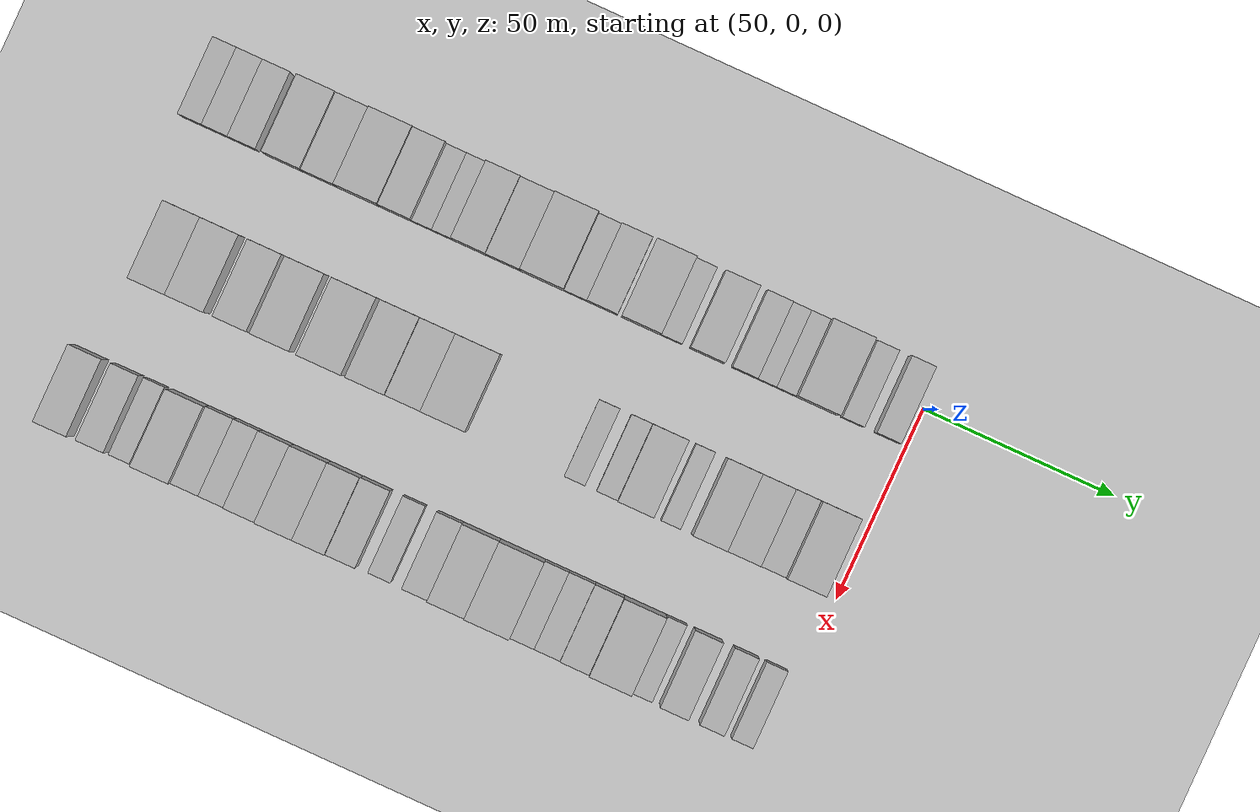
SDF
<sdf version="1.6">
 <world name="default">
  <include><name>ground_plane_1</name><uri>model://HANNAS_ground_plane</uri></include>
  <model name="building_22">
   <static>1</static>
   <pose>50.0000 -186.6353 0 0.000000 0.000000 0.000000</pose>
   <link name="link">
    <pose>0 0 7.50 0 0 0</pose>
    <collision name="collision"><geometry><box><size>20.0000 6.1611 15.0000</size></box></geometry></collision>
    <visual name="visual">
     <cast_shadows>0</cast_shadows>
     <geometry><box><size>20.0000 6.1611 15.0000</size></box></geometry>
     <material>
      <script>
       <uri>model://HANNAS_wall/materials/scripts</uri>
       <uri>model://HANNAS_wall/materials/textures</uri>
       <name>vrc/HANNAS_wall</name>
      </script>
     </material>
    </visual>
   </link>
  </model>
  <model name="building_23">
   <static>1</static>
   <pose>50.0000 -180.1994 0 0.000000 0.000000 0.000000</pose>
   <link name="link">
    <pose>0 0 7.50 0 0 0</pose>
    <collision name="collision"><geometry><box><size>20.0000 6.7107 15.0000</size></box></geometry></collision>
    <visual name="visual">
     <cast_shadows>0</cast_shadows>
     <geometry><box><size>20.0000 6.7107 15.0000</size></box></geometry>
     <material>
      <script>
       <uri>model://HANNAS_wall/materials/scripts</uri>
       <uri>model://HANNAS_wall/materials/textures</uri>
       <name>vrc/HANNAS_wall</name>
      </script>
     </material>
    </visual>
   </link>
  </model>
  <model name="building_24">
   <static>1</static>
   <pose>50.0000 -173.2218 0 0.000000 0.000000 0.000000</pose>
   <link name="link">
    <pose>0 0 7.50 0 0 0</pose>
    <collision name="collision"><geometry><box><size>20.0000 7.2445 15.0000</size></box></geometry></collision>
    <visual name="visual">
     <cast_shadows>0</cast_shadows>
     <geometry><box><size>20.0000 7.2445 15.0000</size></box></geometry>
     <material>
      <script>
       <uri>model://HANNAS_wall/materials/scripts</uri>
       <uri>model://HANNAS_wall/materials/textures</uri>
       <name>vrc/HANNAS_wall</name>
      </script>
     </material>
    </visual>
   </link>
  </model>
  <model name="building_25">
   <static>1</static>
   <pose>50.0000 -162.6572 0 0.000000 0.000000 0.000000</pose>
   <link name="link">
    <pose>0 0 10.50 0 0 0</pose>
    <collision name="collision"><geometry><box><size>20.0000 9.8846 21.0000</size></box></geometry></collision>
    <visual name="visual">
     <cast_shadows>0</cast_shadows>
     <geometry><box><size>20.0000 9.8846 21.0000</size></box></geometry>
     <material>
      <script>
       <uri>model://HANNAS_wall/materials/scripts</uri>
       <uri>model://HANNAS_wall/materials/textures</uri>
       <name>vrc/HANNAS_wall</name>
      </script>
     </material>
    </visual>
   </link>
  </model>
  <model name="building_26">
   <static>1</static>
   <pose>50.0000 -153.3153 0 0.000000 0.000000 0.000000</pose>
   <link name="link">
    <pose>0 0 9.00 0 0 0</pose>
    <collision name="collision"><geometry><box><size>20.0000 8.7991 18.0000</size></box></geometry></collision>
    <visual name="visual">
     <cast_shadows>0</cast_shadows>
     <geometry><box><size>20.0000 8.7991 18.0000</size></box></geometry>
     <material>
      <script>
       <uri>model://HANNAS_wall/materials/scripts</uri>
       <uri>model://HANNAS_wall/materials/textures</uri>
       <name>vrc/HANNAS_wall</name>
      </script>
     </material>
    </visual>
   </link>
  </model>
  <model name="building_27">
   <static>1</static>
   <pose>50.0000 -143.3040 0 0.000000 0.000000 0.000000</pose>
   <link name="link">
    <pose>0 0 12.00 0 0 0</pose>
    <collision name="collision"><geometry><box><size>20.0000 11.2236 24.0000</size></box></geometry></collision>
    <visual name="visual">
     <cast_shadows>0</cast_shadows>
     <geometry><box><size>20.0000 11.2236 24.0000</size></box></geometry>
     <material>
      <script>
       <uri>model://HANNAS_wall/materials/scripts</uri>
       <uri>model://HANNAS_wall/materials/textures</uri>
       <name>vrc/HANNAS_wall</name>
      </script>
     </material>
    </visual>
   </link>
  </model>
  <model name="building_28">
   <static>1</static>
   <pose>50.0000 -133.4801 0 0.000000 0.000000 0.000000</pose>
   <link name="link">
    <pose>0 0 10.50 0 0 0</pose>
    <collision name="collision"><geometry><box><size>20.0000 8.4241 21.0000</size></box></geometry></collision>
    <visual name="visual">
     <cast_shadows>0</cast_shadows>
     <geometry><box><size>20.0000 8.4241 21.0000</size></box></geometry>
     <material>
      <script>
       <uri>model://HANNAS_wall/materials/scripts</uri>
       <uri>model://HANNAS_wall/materials/textures</uri>
       <name>vrc/HANNAS_wall</name>
      </script>
     </material>
    </visual>
   </link>
  </model>
  <model name="building_29">
   <static>1</static>
   <pose>50.0000 -126.6623 0 0.000000 0.000000 0.000000</pose>
   <link name="link">
    <pose>0 0 6.00 0 0 0</pose>
    <collision name="collision"><geometry><box><size>20.0000 5.2115 12.0000</size></box></geometry></collision>
    <visual name="visual">
     <cast_shadows>0</cast_shadows>
     <geometry><box><size>20.0000 5.2115 12.0000</size></box></geometry>
     <material>
      <script>
       <uri>model://HANNAS_wall/materials/scripts</uri>
       <uri>model://HANNAS_wall/materials/textures</uri>
       <name>vrc/HANNAS_wall</name>
      </script>
     </material>
    </visual>
   </link>
  </model>
  <model name="building_30">
   <static>1</static>
   <pose>50.0000 -121.4434 0 0.000000 0.000000 0.000000</pose>
   <link name="link">
    <pose>0 0 6.00 0 0 0</pose>
    <collision name="collision"><geometry><box><size>20.0000 5.2263 12.0000</size></box></geometry></collision>
    <visual name="visual">
     <cast_shadows>0</cast_shadows>
     <geometry><box><size>20.0000 5.2263 12.0000</size></box></geometry>
     <material>
      <script>
       <uri>model://HANNAS_wall/materials/scripts</uri>
       <uri>model://HANNAS_wall/materials/textures</uri>
       <name>vrc/HANNAS_wall</name>
      </script>
     </material>
    </visual>
   </link>
  </model>
  <model name="building_31">
   <static>1</static>
   <pose>50.0000 -114.3831 0 0.000000 0.000000 0.000000</pose>
   <link name="link">
    <pose>0 0 10.50 0 0 0</pose>
    <collision name="collision"><geometry><box><size>20.0000 8.8944 21.0000</size></box></geometry></collision>
    <visual name="visual">
     <cast_shadows>0</cast_shadows>
     <geometry><box><size>20.0000 8.8944 21.0000</size></box></geometry>
     <material>
      <script>
       <uri>model://HANNAS_wall/materials/scripts</uri>
       <uri>model://HANNAS_wall/materials/textures</uri>
       <name>vrc/HANNAS_wall</name>
      </script>
     </material>
    </visual>
   </link>
  </model>
  <model name="building_32">
   <static>1</static>
   <pose>50.0000 -105.4731 0 0.000000 0.000000 0.000000</pose>
   <link name="link">
    <pose>0 0 9.00 0 0 0</pose>
    <collision name="collision"><geometry><box><size>20.0000 8.9255 18.0000</size></box></geometry></collision>
    <visual name="visual">
     <cast_shadows>0</cast_shadows>
     <geometry><box><size>20.0000 8.9255 18.0000</size></box></geometry>
     <material>
      <script>
       <uri>model://HANNAS_wall/materials/scripts</uri>
       <uri>model://HANNAS_wall/materials/textures</uri>
       <name>vrc/HANNAS_wall</name>
      </script>
     </material>
    </visual>
   </link>
  </model>
  <model name="building_33">
   <static>1</static>
   <pose>50.0000 -95.3395 0 0.000000 0.000000 0.000000</pose>
   <link name="link">
    <pose>0 0 12.00 0 0 0</pose>
    <collision name="collision"><geometry><box><size>20.0000 11.3417 24.0000</size></box></geometry></collision>
    <visual name="visual">
     <cast_shadows>0</cast_shadows>
     <geometry><box><size>20.0000 11.3417 24.0000</size></box></geometry>
     <material>
      <script>
       <uri>model://HANNAS_wall/materials/scripts</uri>
       <uri>model://HANNAS_wall/materials/textures</uri>
       <name>vrc/HANNAS_wall</name>
      </script>
     </material>
    </visual>
   </link>
  </model>
  <model name="building_34">
   <static>1</static>
   <pose>50.0000 -86.6856 0 0.000000 0.000000 0.000000</pose>
   <link name="link">
    <pose>0 0 6.00 0 0 0</pose>
    <collision name="collision"><geometry><box><size>20.0000 5.9661 12.0000</size></box></geometry></collision>
    <visual name="visual">
     <cast_shadows>0</cast_shadows>
     <geometry><box><size>20.0000 5.9661 12.0000</size></box></geometry>
     <material>
      <script>
       <uri>model://HANNAS_wall/materials/scripts</uri>
       <uri>model://HANNAS_wall/materials/textures</uri>
       <name>vrc/HANNAS_wall</name>
      </script>
     </material>
    </visual>
   </link>
  </model>
  <model name="building_35">
   <static>1</static>
   <pose>50.0000 -79.6899 0 0.000000 0.000000 0.000000</pose>
   <link name="link">
    <pose>0 0 9.00 0 0 0</pose>
    <collision name="collision"><geometry><box><size>20.0000 8.0252 18.0000</size></box></geometry></collision>
    <visual name="visual">
     <cast_shadows>0</cast_shadows>
     <geometry><box><size>20.0000 8.0252 18.0000</size></box></geometry>
     <material>
      <script>
       <uri>model://HANNAS_wall/materials/scripts</uri>
       <uri>model://HANNAS_wall/materials/textures</uri>
       <name>vrc/HANNAS_wall</name>
      </script>
     </material>
    </visual>
   </link>
  </model>
  <model name="building_36">
   <static>1</static>
   <pose>50.0000 -69.5287 0 0.000000 0.000000 0.000000</pose>
   <link name="link">
    <pose>0 0 12.00 0 0 0</pose>
    <collision name="collision"><geometry><box><size>20.0000 10.2972 24.0000</size></box></geometry></collision>
    <visual name="visual">
     <cast_shadows>0</cast_shadows>
     <geometry><box><size>20.0000 10.2972 24.0000</size></box></geometry>
     <material>
      <script>
       <uri>model://HANNAS_wall/materials/scripts</uri>
       <uri>model://HANNAS_wall/materials/textures</uri>
       <name>vrc/HANNAS_wall</name>
      </script>
     </material>
    </visual>
   </link>
  </model>
  <model name="building_37">
   <static>1</static>
   <pose>50.0000 -61.6274 0 0.000000 0.000000 0.000000</pose>
   <link name="link">
    <pose>0 0 6.00 0 0 0</pose>
    <collision name="collision"><geometry><box><size>20.0000 5.5054 12.0000</size></box></geometry></collision>
    <visual name="visual">
     <cast_shadows>0</cast_shadows>
     <geometry><box><size>20.0000 5.5054 12.0000</size></box></geometry>
     <material>
      <script>
       <uri>model://HANNAS_wall/materials/scripts</uri>
       <uri>model://HANNAS_wall/materials/textures</uri>
       <name>vrc/HANNAS_wall</name>
      </script>
     </material>
    </visual>
   </link>
  </model>
  <model name="building_38">
   <static>1</static>
   <pose>50.0000 -52.4011 0 0.000000 0.000000 0.000000</pose>
   <link name="link">
    <pose>0 0 10.50 0 0 0</pose>
    <collision name="collision"><geometry><box><size>20.0000 8.9473 21.0000</size></box></geometry></collision>
    <visual name="visual">
     <cast_shadows>0</cast_shadows>
     <geometry><box><size>20.0000 8.9473 21.0000</size></box></geometry>
     <material>
      <script>
       <uri>model://HANNAS_wall/materials/scripts</uri>
       <uri>model://HANNAS_wall/materials/textures</uri>
       <name>vrc/HANNAS_wall</name>
      </script>
     </material>
    </visual>
   </link>
  </model>
  <model name="building_39">
   <static>1</static>
   <pose>50.0000 -42.5982 0 0.000000 0.000000 0.000000</pose>
   <link name="link">
    <pose>0 0 7.50 0 0 0</pose>
    <collision name="collision"><geometry><box><size>20.0000 6.6586 15.0000</size></box></geometry></collision>
    <visual name="visual">
     <cast_shadows>0</cast_shadows>
     <geometry><box><size>20.0000 6.6586 15.0000</size></box></geometry>
     <material>
      <script>
       <uri>model://HANNAS_wall/materials/scripts</uri>
       <uri>model://HANNAS_wall/materials/textures</uri>
       <name>vrc/HANNAS_wall</name>
      </script>
     </material>
    </visual>
   </link>
  </model>
  <model name="building_40">
   <static>1</static>
   <pose>50.0000 -36.8276 0 0.000000 0.000000 0.000000</pose>
   <link name="link">
    <pose>0 0 6.00 0 0 0</pose>
    <collision name="collision"><geometry><box><size>20.0000 4.8826 12.0000</size></box></geometry></collision>
    <visual name="visual">
     <cast_shadows>0</cast_shadows>
     <geometry><box><size>20.0000 4.8826 12.0000</size></box></geometry>
     <material>
      <script>
       <uri>model://HANNAS_wall/materials/scripts</uri>
       <uri>model://HANNAS_wall/materials/textures</uri>
       <name>vrc/HANNAS_wall</name>
      </script>
     </material>
    </visual>
   </link>
  </model>
  <model name="building_41">
   <static>1</static>
   <pose>50.0000 -31.8640 0 0.000000 0.000000 0.000000</pose>
   <link name="link">
    <pose>0 0 6.00 0 0 0</pose>
    <collision name="collision"><geometry><box><size>20.0000 5.0447 12.0000</size></box></geometry></collision>
    <visual name="visual">
     <cast_shadows>0</cast_shadows>
     <geometry><box><size>20.0000 5.0447 12.0000</size></box></geometry>
     <material>
      <script>
       <uri>model://HANNAS_wall/materials/scripts</uri>
       <uri>model://HANNAS_wall/materials/textures</uri>
       <name>vrc/HANNAS_wall</name>
      </script>
     </material>
    </visual>
   </link>
  </model>
  <model name="building_42">
   <static>1</static>
   <pose>50.0000 -23.8249 0 0.000000 0.000000 0.000000</pose>
   <link name="link">
    <pose>0 0 12.00 0 0 0</pose>
    <collision name="collision"><geometry><box><size>20.0000 11.0335 24.0000</size></box></geometry></collision>
    <visual name="visual">
     <cast_shadows>0</cast_shadows>
     <geometry><box><size>20.0000 11.0335 24.0000</size></box></geometry>
     <material>
      <script>
       <uri>model://HANNAS_wall/materials/scripts</uri>
       <uri>model://HANNAS_wall/materials/textures</uri>
       <name>vrc/HANNAS_wall</name>
      </script>
     </material>
    </visual>
   </link>
  </model>
  <model name="building_43">
   <static>1</static>
   <pose>50.0000 -14.4218 0 0.000000 0.000000 0.000000</pose>
   <link name="link">
    <pose>0 0 6.00 0 0 0</pose>
    <collision name="collision"><geometry><box><size>20.0000 5.7728 12.0000</size></box></geometry></collision>
    <visual name="visual">
     <cast_shadows>0</cast_shadows>
     <geometry><box><size>20.0000 5.7728 12.0000</size></box></geometry>
     <material>
      <script>
       <uri>model://HANNAS_wall/materials/scripts</uri>
       <uri>model://HANNAS_wall/materials/textures</uri>
       <name>vrc/HANNAS_wall</name>
      </script>
     </material>
    </visual>
   </link>
  </model>
  <model name="building_44">
   <static>1</static>
   <pose>50.0000 -5.3733 0 0.000000 0.000000 0.000000</pose>
   <link name="link">
    <pose>0 0 7.50 0 0 0</pose>
    <collision name="collision"><geometry><box><size>20.0000 6.3242 15.0000</size></box></geometry></collision>
    <visual name="visual">
     <cast_shadows>0</cast_shadows>
     <geometry><box><size>20.0000 6.3242 15.0000</size></box></geometry>
     <material>
      <script>
       <uri>model://HANNAS_wall/materials/scripts</uri>
       <uri>model://HANNAS_wall/materials/textures</uri>
       <name>vrc/HANNAS_wall</name>
      </script>
     </material>
    </visual>
   </link>
  </model>
  <model name="building_104">
   <static>1</static>
   <pose>90.0000 -179.0291 0 0.000000 0.000000 0.000000</pose>
   <link name="link">
    <pose>0 0 10.50 0 0 0</pose>
    <collision name="collision"><geometry><box><size>20.0000 9.5941 21.0000</size></box></geometry></collision>
    <visual name="visual">
     <cast_shadows>0</cast_shadows>
     <geometry><box><size>20.0000 9.5941 21.0000</size></box></geometry>
     <material>
      <script>
       <uri>model://HANNAS_wall/materials/scripts</uri>
       <uri>model://HANNAS_wall/materials/textures</uri>
       <name>vrc/HANNAS_wall</name>
      </script>
     </material>
    </visual>
   </link>
  </model>
  <model name="building_105">
   <static>1</static>
   <pose>90.0000 -169.2401 0 0.000000 0.000000 0.000000</pose>
   <link name="link">
    <pose>0 0 10.50 0 0 0</pose>
    <collision name="collision"><geometry><box><size>20.0000 9.9839 21.0000</size></box></geometry></collision>
    <visual name="visual">
     <cast_shadows>0</cast_shadows>
     <geometry><box><size>20.0000 9.9839 21.0000</size></box></geometry>
     <material>
      <script>
       <uri>model://HANNAS_wall/materials/scripts</uri>
       <uri>model://HANNAS_wall/materials/textures</uri>
       <name>vrc/HANNAS_wall</name>
      </script>
     </material>
    </visual>
   </link>
  </model>
  <model name="building_106">
   <static>1</static>
   <pose>90.0000 -157.8310 0 0.000000 0.000000 0.000000</pose>
   <link name="link">
    <pose>0 0 9.00 0 0 0</pose>
    <collision name="collision"><geometry><box><size>20.0000 8.8343 18.0000</size></box></geometry></collision>
    <visual name="visual">
     <cast_shadows>0</cast_shadows>
     <geometry><box><size>20.0000 8.8343 18.0000</size></box></geometry>
     <material>
      <script>
       <uri>model://HANNAS_wall/materials/scripts</uri>
       <uri>model://HANNAS_wall/materials/textures</uri>
       <name>vrc/HANNAS_wall</name>
      </script>
     </material>
    </visual>
   </link>
  </model>
  <model name="building_107">
   <static>1</static>
   <pose>90.0000 -147.3095 0 0.000000 0.000000 0.000000</pose>
   <link name="link">
    <pose>0 0 10.50 0 0 0</pose>
    <collision name="collision"><geometry><box><size>20.0000 10.2088 21.0000</size></box></geometry></collision>
    <visual name="visual">
     <cast_shadows>0</cast_shadows>
     <geometry><box><size>20.0000 10.2088 21.0000</size></box></geometry>
     <material>
      <script>
       <uri>model://HANNAS_wall/materials/scripts</uri>
       <uri>model://HANNAS_wall/materials/textures</uri>
       <name>vrc/HANNAS_wall</name>
      </script>
     </material>
    </visual>
   </link>
  </model>
  <model name="building_108">
   <static>1</static>
   <pose>90.0000 -134.4307 0 0.000000 0.000000 0.000000</pose>
   <link name="link">
    <pose>0 0 12.00 0 0 0</pose>
    <collision name="collision"><geometry><box><size>20.0000 11.5488 24.0000</size></box></geometry></collision>
    <visual name="visual">
     <cast_shadows>0</cast_shadows>
     <geometry><box><size>20.0000 11.5488 24.0000</size></box></geometry>
     <material>
      <script>
       <uri>model://HANNAS_wall/materials/scripts</uri>
       <uri>model://HANNAS_wall/materials/textures</uri>
       <name>vrc/HANNAS_wall</name>
      </script>
     </material>
    </visual>
   </link>
  </model>
  <model name="building_109">
   <static>1</static>
   <pose>90.0000 -122.5979 0 0.000000 0.000000 0.000000</pose>
   <link name="link">
    <pose>0 0 12.00 0 0 0</pose>
    <collision name="collision"><geometry><box><size>20.0000 10.1167 24.0000</size></box></geometry></collision>
    <visual name="visual">
     <cast_shadows>0</cast_shadows>
     <geometry><box><size>20.0000 10.1167 24.0000</size></box></geometry>
     <material>
      <script>
       <uri>model://HANNAS_wall/materials/scripts</uri>
       <uri>model://HANNAS_wall/materials/textures</uri>
       <name>vrc/HANNAS_wall</name>
      </script>
     </material>
    </visual>
   </link>
  </model>
  <model name="building_110">
   <static>1</static>
   <pose>90.0000 -112.9334 0 0.000000 0.000000 0.000000</pose>
   <link name="link">
    <pose>0 0 10.50 0 0 0</pose>
    <collision name="collision"><geometry><box><size>20.0000 9.2124 21.0000</size></box></geometry></collision>
    <visual name="visual">
     <cast_shadows>0</cast_shadows>
     <geometry><box><size>20.0000 9.2124 21.0000</size></box></geometry>
     <material>
      <script>
       <uri>model://HANNAS_wall/materials/scripts</uri>
       <uri>model://HANNAS_wall/materials/textures</uri>
       <name>vrc/HANNAS_wall</name>
      </script>
     </material>
    </visual>
   </link>
  </model>
  <model name="building_111">
   <static>1</static>
   <pose>90.0000 -102.5523 0 0.000000 0.000000 0.000000</pose>
   <link name="link">
    <pose>0 0 12.00 0 0 0</pose>
    <collision name="collision"><geometry><box><size>20.0000 11.5497 24.0000</size></box></geometry></collision>
    <visual name="visual">
     <cast_shadows>0</cast_shadows>
     <geometry><box><size>20.0000 11.5497 24.0000</size></box></geometry>
     <material>
      <script>
       <uri>model://HANNAS_wall/materials/scripts</uri>
       <uri>model://HANNAS_wall/materials/textures</uri>
       <name>vrc/HANNAS_wall</name>
      </script>
     </material>
    </visual>
   </link>
  </model>
  <model name="building_112">
   <static>1</static>
   <pose>90.0000 -68.6196 0 0.000000 0.000000 0.000000</pose>
   <link name="link">
    <pose>0 0 6.00 0 0 0</pose>
    <collision name="collision"><geometry><box><size>20.0000 5.4385 12.0000</size></box></geometry></collision>
    <visual name="visual">
     <cast_shadows>0</cast_shadows>
     <geometry><box><size>20.0000 5.4385 12.0000</size></box></geometry>
     <material>
      <script>
       <uri>model://HANNAS_wall/materials/scripts</uri>
       <uri>model://HANNAS_wall/materials/textures</uri>
       <name>vrc/HANNAS_wall</name>
      </script>
     </material>
    </visual>
   </link>
  </model>
  <model name="building_113">
   <static>1</static>
   <pose>90.0000 -60.1646 0 0.000000 0.000000 0.000000</pose>
   <link name="link">
    <pose>0 0 6.00 0 0 0</pose>
    <collision name="collision"><geometry><box><size>20.0000 5.4714 12.0000</size></box></geometry></collision>
    <visual name="visual">
     <cast_shadows>0</cast_shadows>
     <geometry><box><size>20.0000 5.4714 12.0000</size></box></geometry>
     <material>
      <script>
       <uri>model://HANNAS_wall/materials/scripts</uri>
       <uri>model://HANNAS_wall/materials/textures</uri>
       <name>vrc/HANNAS_wall</name>
      </script>
     </material>
    </visual>
   </link>
  </model>
  <model name="building_114">
   <static>1</static>
   <pose>90.0000 -52.7710 0 0.000000 0.000000 0.000000</pose>
   <link name="link">
    <pose>0 0 10.50 0 0 0</pose>
    <collision name="collision"><geometry><box><size>20.0000 9.3159 21.0000</size></box></geometry></collision>
    <visual name="visual">
     <cast_shadows>0</cast_shadows>
     <geometry><box><size>20.0000 9.3159 21.0000</size></box></geometry>
     <material>
      <script>
       <uri>model://HANNAS_wall/materials/scripts</uri>
       <uri>model://HANNAS_wall/materials/textures</uri>
       <name>vrc/HANNAS_wall</name>
      </script>
     </material>
    </visual>
   </link>
  </model>
  <model name="building_115">
   <static>1</static>
   <pose>90.0000 -43.6032 0 0.000000 0.000000 0.000000</pose>
   <link name="link">
    <pose>0 0 6.00 0 0 0</pose>
    <collision name="collision"><geometry><box><size>20.0000 5.0196 12.0000</size></box></geometry></collision>
    <visual name="visual">
     <cast_shadows>0</cast_shadows>
     <geometry><box><size>20.0000 5.0196 12.0000</size></box></geometry>
     <material>
      <script>
       <uri>model://HANNAS_wall/materials/scripts</uri>
       <uri>model://HANNAS_wall/materials/textures</uri>
       <name>vrc/HANNAS_wall</name>
      </script>
     </material>
    </visual>
   </link>
  </model>
  <model name="building_116">
   <static>1</static>
   <pose>90.0000 -33.6098 0 0.000000 0.000000 0.000000</pose>
   <link name="link">
    <pose>0 0 10.50 0 0 0</pose>
    <collision name="collision"><geometry><box><size>20.0000 8.9673 21.0000</size></box></geometry></collision>
    <visual name="visual">
     <cast_shadows>0</cast_shadows>
     <geometry><box><size>20.0000 8.9673 21.0000</size></box></geometry>
     <material>
      <script>
       <uri>model://HANNAS_wall/materials/scripts</uri>
       <uri>model://HANNAS_wall/materials/textures</uri>
       <name>vrc/HANNAS_wall</name>
      </script>
     </material>
    </visual>
   </link>
  </model>
  <model name="building_117">
   <static>1</static>
   <pose>90.0000 -24.7744 0 0.000000 0.000000 0.000000</pose>
   <link name="link">
    <pose>0 0 9.00 0 0 0</pose>
    <collision name="collision"><geometry><box><size>20.0000 8.7035 18.0000</size></box></geometry></collision>
    <visual name="visual">
     <cast_shadows>0</cast_shadows>
     <geometry><box><size>20.0000 8.7035 18.0000</size></box></geometry>
     <material>
      <script>
       <uri>model://HANNAS_wall/materials/scripts</uri>
       <uri>model://HANNAS_wall/materials/textures</uri>
       <name>vrc/HANNAS_wall</name>
      </script>
     </material>
    </visual>
   </link>
  </model>
  <model name="building_118">
   <static>1</static>
   <pose>90.0000 -17.1199 0 0.000000 0.000000 0.000000</pose>
   <link name="link">
    <pose>0 0 7.50 0 0 0</pose>
    <collision name="collision"><geometry><box><size>20.0000 6.6056 15.0000</size></box></geometry></collision>
    <visual name="visual">
     <cast_shadows>0</cast_shadows>
     <geometry><box><size>20.0000 6.6056 15.0000</size></box></geometry>
     <material>
      <script>
       <uri>model://HANNAS_wall/materials/scripts</uri>
       <uri>model://HANNAS_wall/materials/textures</uri>
       <name>vrc/HANNAS_wall</name>
      </script>
     </material>
    </visual>
   </link>
  </model>
  <model name="building_119">
   <static>1</static>
   <pose>90.0000 -8.7834 0 0.000000 0.000000 0.000000</pose>
   <link name="link">
    <pose>0 0 12.00 0 0 0</pose>
    <collision name="collision"><geometry><box><size>20.0000 10.0673 24.0000</size></box></geometry></collision>
    <visual name="visual">
     <cast_shadows>0</cast_shadows>
     <geometry><box><size>20.0000 10.0673 24.0000</size></box></geometry>
     <material>
      <script>
       <uri>model://HANNAS_wall/materials/scripts</uri>
       <uri>model://HANNAS_wall/materials/textures</uri>
       <name>vrc/HANNAS_wall</name>
      </script>
     </material>
    </visual>
   </link>
  </model>
  <model name="building_183">
   <static>1</static>
   <pose>130.0000 -186.0179 0 0.000000 0.000000 0.000000</pose>
   <link name="link">
    <pose>0 0 9.00 0 0 0</pose>
    <collision name="collision"><geometry><box><size>20.0000 8.6584 18.0000</size></box></geometry></collision>
    <visual name="visual">
     <cast_shadows>0</cast_shadows>
     <geometry><box><size>20.0000 8.6584 18.0000</size></box></geometry>
     <material>
      <script>
       <uri>model://HANNAS_wall/materials/scripts</uri>
       <uri>model://HANNAS_wall/materials/textures</uri>
       <name>vrc/HANNAS_wall</name>
      </script>
     </material>
    </visual>
   </link>
  </model>
  <model name="building_184">
   <static>1</static>
   <pose>130.0000 -176.0645 0 0.000000 0.000000 0.000000</pose>
   <link name="link">
    <pose>0 0 7.50 0 0 0</pose>
    <collision name="collision"><geometry><box><size>20.0000 7.2484 15.0000</size></box></geometry></collision>
    <visual name="visual">
     <cast_shadows>0</cast_shadows>
     <geometry><box><size>20.0000 7.2484 15.0000</size></box></geometry>
     <material>
      <script>
       <uri>model://HANNAS_wall/materials/scripts</uri>
       <uri>model://HANNAS_wall/materials/textures</uri>
       <name>vrc/HANNAS_wall</name>
      </script>
     </material>
    </visual>
   </link>
  </model>
  <model name="building_185">
   <static>1</static>
   <pose>130.0000 -168.7108 0 0.000000 0.000000 0.000000</pose>
   <link name="link">
    <pose>0 0 6.00 0 0 0</pose>
    <collision name="collision"><geometry><box><size>20.0000 5.4588 12.0000</size></box></geometry></collision>
    <visual name="visual">
     <cast_shadows>0</cast_shadows>
     <geometry><box><size>20.0000 5.4588 12.0000</size></box></geometry>
     <material>
      <script>
       <uri>model://HANNAS_wall/materials/scripts</uri>
       <uri>model://HANNAS_wall/materials/textures</uri>
       <name>vrc/HANNAS_wall</name>
      </script>
     </material>
    </visual>
   </link>
  </model>
  <model name="building_186">
   <static>1</static>
   <pose>130.0000 -160.0265 0 0.000000 0.000000 0.000000</pose>
   <link name="link">
    <pose>0 0 10.50 0 0 0</pose>
    <collision name="collision"><geometry><box><size>20.0000 9.9099 21.0000</size></box></geometry></collision>
    <visual name="visual">
     <cast_shadows>0</cast_shadows>
     <geometry><box><size>20.0000 9.9099 21.0000</size></box></geometry>
     <material>
      <script>
       <uri>model://HANNAS_wall/materials/scripts</uri>
       <uri>model://HANNAS_wall/materials/textures</uri>
       <name>vrc/HANNAS_wall</name>
      </script>
     </material>
    </visual>
   </link>
  </model>
  <model name="building_187">
   <static>1</static>
   <pose>130.0000 -151.4911 0 0.000000 0.000000 0.000000</pose>
   <link name="link">
    <pose>0 0 7.50 0 0 0</pose>
    <collision name="collision"><geometry><box><size>20.0000 7.1608 15.0000</size></box></geometry></collision>
    <visual name="visual">
     <cast_shadows>0</cast_shadows>
     <geometry><box><size>20.0000 7.1608 15.0000</size></box></geometry>
     <material>
      <script>
       <uri>model://HANNAS_wall/materials/scripts</uri>
       <uri>model://HANNAS_wall/materials/textures</uri>
       <name>vrc/HANNAS_wall</name>
      </script>
     </material>
    </visual>
   </link>
  </model>
  <model name="building_188">
   <static>1</static>
   <pose>130.0000 -144.5807 0 0.000000 0.000000 0.000000</pose>
   <link name="link">
    <pose>0 0 7.50 0 0 0</pose>
    <collision name="collision"><geometry><box><size>20.0000 6.6601 15.0000</size></box></geometry></collision>
    <visual name="visual">
     <cast_shadows>0</cast_shadows>
     <geometry><box><size>20.0000 6.6601 15.0000</size></box></geometry>
     <material>
      <script>
       <uri>model://HANNAS_wall/materials/scripts</uri>
       <uri>model://HANNAS_wall/materials/textures</uri>
       <name>vrc/HANNAS_wall</name>
      </script>
     </material>
    </visual>
   </link>
  </model>
  <model name="building_189">
   <static>1</static>
   <pose>130.0000 -137.1138 0 0.000000 0.000000 0.000000</pose>
   <link name="link">
    <pose>0 0 9.00 0 0 0</pose>
    <collision name="collision"><geometry><box><size>20.0000 8.2738 18.0000</size></box></geometry></collision>
    <visual name="visual">
     <cast_shadows>0</cast_shadows>
     <geometry><box><size>20.0000 8.2738 18.0000</size></box></geometry>
     <material>
      <script>
       <uri>model://HANNAS_wall/materials/scripts</uri>
       <uri>model://HANNAS_wall/materials/textures</uri>
       <name>vrc/HANNAS_wall</name>
      </script>
     </material>
    </visual>
   </link>
  </model>
  <model name="building_190">
   <static>1</static>
   <pose>130.0000 -128.1285 0 0.000000 0.000000 0.000000</pose>
   <link name="link">
    <pose>0 0 10.50 0 0 0</pose>
    <collision name="collision"><geometry><box><size>20.0000 9.6967 21.0000</size></box></geometry></collision>
    <visual name="visual">
     <cast_shadows>0</cast_shadows>
     <geometry><box><size>20.0000 9.6967 21.0000</size></box></geometry>
     <material>
      <script>
       <uri>model://HANNAS_wall/materials/scripts</uri>
       <uri>model://HANNAS_wall/materials/textures</uri>
       <name>vrc/HANNAS_wall</name>
      </script>
     </material>
    </visual>
   </link>
  </model>
  <model name="building_191">
   <static>1</static>
   <pose>130.0000 -119.0605 0 0.000000 0.000000 0.000000</pose>
   <link name="link">
    <pose>0 0 10.50 0 0 0</pose>
    <collision name="collision"><geometry><box><size>20.0000 8.4395 21.0000</size></box></geometry></collision>
    <visual name="visual">
     <cast_shadows>0</cast_shadows>
     <geometry><box><size>20.0000 8.4395 21.0000</size></box></geometry>
     <material>
      <script>
       <uri>model://HANNAS_wall/materials/scripts</uri>
       <uri>model://HANNAS_wall/materials/textures</uri>
       <name>vrc/HANNAS_wall</name>
      </script>
     </material>
    </visual>
   </link>
  </model>
  <model name="building_192">
   <static>1</static>
   <pose>130.0000 -110.9772 0 0.000000 0.000000 0.000000</pose>
   <link name="link">
    <pose>0 0 9.00 0 0 0</pose>
    <collision name="collision"><geometry><box><size>20.0000 7.7271 18.0000</size></box></geometry></collision>
    <visual name="visual">
     <cast_shadows>0</cast_shadows>
     <geometry><box><size>20.0000 7.7271 18.0000</size></box></geometry>
     <material>
      <script>
       <uri>model://HANNAS_wall/materials/scripts</uri>
       <uri>model://HANNAS_wall/materials/textures</uri>
       <name>vrc/HANNAS_wall</name>
      </script>
     </material>
    </visual>
   </link>
  </model>
  <model name="building_193">
   <static>1</static>
   <pose>130.0000 -101.1694 0 0.000000 0.000000 0.000000</pose>
   <link name="link">
    <pose>0 0 6.00 0 0 0</pose>
    <collision name="collision"><geometry><box><size>20.0000 5.8885 12.0000</size></box></geometry></collision>
    <visual name="visual">
     <cast_shadows>0</cast_shadows>
     <geometry><box><size>20.0000 5.8885 12.0000</size></box></geometry>
     <material>
      <script>
       <uri>model://HANNAS_wall/materials/scripts</uri>
       <uri>model://HANNAS_wall/materials/textures</uri>
       <name>vrc/HANNAS_wall</name>
      </script>
     </material>
    </visual>
   </link>
  </model>
  <model name="building_194">
   <static>1</static>
   <pose>130.0000 -91.8436 0 0.000000 0.000000 0.000000</pose>
   <link name="link">
    <pose>0 0 7.50 0 0 0</pose>
    <collision name="collision"><geometry><box><size>20.0000 6.7630 15.0000</size></box></geometry></collision>
    <visual name="visual">
     <cast_shadows>0</cast_shadows>
     <geometry><box><size>20.0000 6.7630 15.0000</size></box></geometry>
     <material>
      <script>
       <uri>model://HANNAS_wall/materials/scripts</uri>
       <uri>model://HANNAS_wall/materials/textures</uri>
       <name>vrc/HANNAS_wall</name>
      </script>
     </material>
    </visual>
   </link>
  </model>
  <model name="building_195">
   <static>1</static>
   <pose>130.0000 -83.6459 0 0.000000 0.000000 0.000000</pose>
   <link name="link">
    <pose>0 0 10.50 0 0 0</pose>
    <collision name="collision"><geometry><box><size>20.0000 9.6324 21.0000</size></box></geometry></collision>
    <visual name="visual">
     <cast_shadows>0</cast_shadows>
     <geometry><box><size>20.0000 9.6324 21.0000</size></box></geometry>
     <material>
      <script>
       <uri>model://HANNAS_wall/materials/scripts</uri>
       <uri>model://HANNAS_wall/materials/textures</uri>
       <name>vrc/HANNAS_wall</name>
      </script>
     </material>
    </visual>
   </link>
  </model>
  <model name="building_196">
   <static>1</static>
   <pose>130.0000 -72.9995 0 0.000000 0.000000 0.000000</pose>
   <link name="link">
    <pose>0 0 12.00 0 0 0</pose>
    <collision name="collision"><geometry><box><size>20.0000 11.6604 24.0000</size></box></geometry></collision>
    <visual name="visual">
     <cast_shadows>0</cast_shadows>
     <geometry><box><size>20.0000 11.6604 24.0000</size></box></geometry>
     <material>
      <script>
       <uri>model://HANNAS_wall/materials/scripts</uri>
       <uri>model://HANNAS_wall/materials/textures</uri>
       <name>vrc/HANNAS_wall</name>
      </script>
     </material>
    </visual>
   </link>
  </model>
  <model name="building_197">
   <static>1</static>
   <pose>130.0000 -64.0094 0 0.000000 0.000000 0.000000</pose>
   <link name="link">
    <pose>0 0 7.50 0 0 0</pose>
    <collision name="collision"><geometry><box><size>20.0000 6.3197 15.0000</size></box></geometry></collision>
    <visual name="visual">
     <cast_shadows>0</cast_shadows>
     <geometry><box><size>20.0000 6.3197 15.0000</size></box></geometry>
     <material>
      <script>
       <uri>model://HANNAS_wall/materials/scripts</uri>
       <uri>model://HANNAS_wall/materials/textures</uri>
       <name>vrc/HANNAS_wall</name>
      </script>
     </material>
    </visual>
   </link>
  </model>
  <model name="building_198">
   <static>1</static>
   <pose>130.0000 -57.4833 0 0.000000 0.000000 0.000000</pose>
   <link name="link">
    <pose>0 0 7.50 0 0 0</pose>
    <collision name="collision"><geometry><box><size>20.0000 6.7324 15.0000</size></box></geometry></collision>
    <visual name="visual">
     <cast_shadows>0</cast_shadows>
     <geometry><box><size>20.0000 6.7324 15.0000</size></box></geometry>
     <material>
      <script>
       <uri>model://HANNAS_wall/materials/scripts</uri>
       <uri>model://HANNAS_wall/materials/textures</uri>
       <name>vrc/HANNAS_wall</name>
      </script>
     </material>
    </visual>
   </link>
  </model>
  <model name="building_199">
   <static>1</static>
   <pose>130.0000 -50.3575 0 0.000000 0.000000 0.000000</pose>
   <link name="link">
    <pose>0 0 9.00 0 0 0</pose>
    <collision name="collision"><geometry><box><size>20.0000 7.5192 18.0000</size></box></geometry></collision>
    <visual name="visual">
     <cast_shadows>0</cast_shadows>
     <geometry><box><size>20.0000 7.5192 18.0000</size></box></geometry>
     <material>
      <script>
       <uri>model://HANNAS_wall/materials/scripts</uri>
       <uri>model://HANNAS_wall/materials/textures</uri>
       <name>vrc/HANNAS_wall</name>
      </script>
     </material>
    </visual>
   </link>
  </model>
  <model name="building_200">
   <static>1</static>
   <pose>130.0000 -41.1112 0 0.000000 0.000000 0.000000</pose>
   <link name="link">
    <pose>0 0 12.00 0 0 0</pose>
    <collision name="collision"><geometry><box><size>20.0000 10.9734 24.0000</size></box></geometry></collision>
    <visual name="visual">
     <cast_shadows>0</cast_shadows>
     <geometry><box><size>20.0000 10.9734 24.0000</size></box></geometry>
     <material>
      <script>
       <uri>model://HANNAS_wall/materials/scripts</uri>
       <uri>model://HANNAS_wall/materials/textures</uri>
       <name>vrc/HANNAS_wall</name>
      </script>
     </material>
    </visual>
   </link>
  </model>
  <model name="building_201">
   <static>1</static>
   <pose>130.0000 -32.9340 0 0.000000 0.000000 0.000000</pose>
   <link name="link">
    <pose>0 0 6.00 0 0 0</pose>
    <collision name="collision"><geometry><box><size>20.0000 5.3811 12.0000</size></box></geometry></collision>
    <visual name="visual">
     <cast_shadows>0</cast_shadows>
     <geometry><box><size>20.0000 5.3811 12.0000</size></box></geometry>
     <material>
      <script>
       <uri>model://HANNAS_wall/materials/scripts</uri>
       <uri>model://HANNAS_wall/materials/textures</uri>
       <name>vrc/HANNAS_wall</name>
      </script>
     </material>
    </visual>
   </link>
  </model>
  <model name="building_202">
   <static>1</static>
   <pose>130.0000 -24.5807 0 0.000000 0.000000 0.000000</pose>
   <link name="link">
    <pose>0 0 9.00 0 0 0</pose>
    <collision name="collision"><geometry><box><size>20.0000 7.3256 18.0000</size></box></geometry></collision>
    <visual name="visual">
     <cast_shadows>0</cast_shadows>
     <geometry><box><size>20.0000 7.3256 18.0000</size></box></geometry>
     <material>
      <script>
       <uri>model://HANNAS_wall/materials/scripts</uri>
       <uri>model://HANNAS_wall/materials/textures</uri>
       <name>vrc/HANNAS_wall</name>
      </script>
     </material>
    </visual>
   </link>
  </model>
  <model name="building_203">
   <static>1</static>
   <pose>130.0000 -14.7361 0 0.000000 0.000000 0.000000</pose>
   <link name="link">
    <pose>0 0 7.50 0 0 0</pose>
    <collision name="collision"><geometry><box><size>20.0000 6.3636 15.0000</size></box></geometry></collision>
    <visual name="visual">
     <cast_shadows>0</cast_shadows>
     <geometry><box><size>20.0000 6.3636 15.0000</size></box></geometry>
     <material>
      <script>
       <uri>model://HANNAS_wall/materials/scripts</uri>
       <uri>model://HANNAS_wall/materials/textures</uri>
       <name>vrc/HANNAS_wall</name>
      </script>
     </material>
    </visual>
   </link>
  </model>
  <model name="building_204">
   <static>1</static>
   <pose>130.0000 -6.7801 0 0.000000 0.000000 0.000000</pose>
   <link name="link">
    <pose>0 0 6.00 0 0 0</pose>
    <collision name="collision"><geometry><box><size>20.0000 5.5485 12.0000</size></box></geometry></collision>
    <visual name="visual">
     <cast_shadows>0</cast_shadows>
     <geometry><box><size>20.0000 5.5485 12.0000</size></box></geometry>
     <material>
      <script>
       <uri>model://HANNAS_wall/materials/scripts</uri>
       <uri>model://HANNAS_wall/materials/textures</uri>
       <name>vrc/HANNAS_wall</name>
      </script>
     </material>
    </visual>
   </link>
  </model>
 </world>
</sdf>
